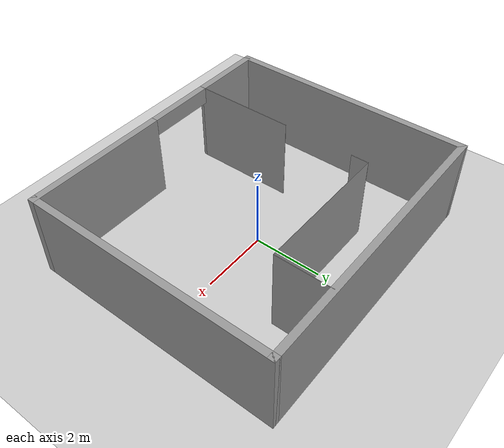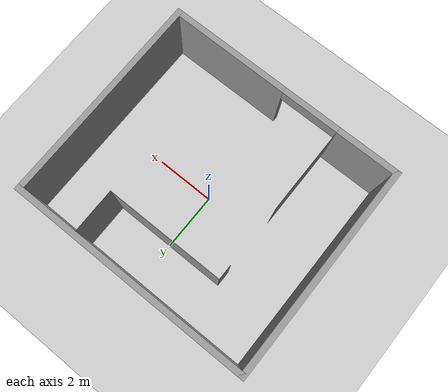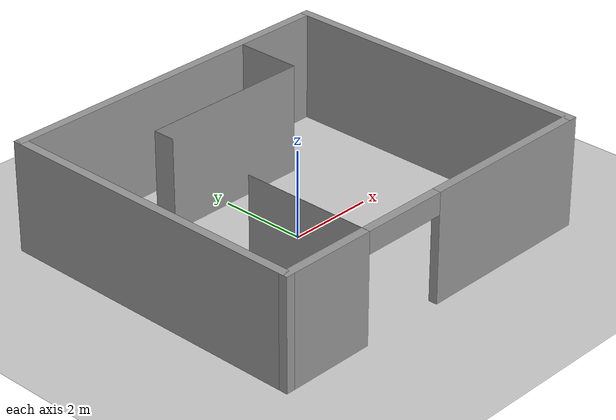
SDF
<sdf version="1.4">
 <world name="default">
  <plugin name="ros_link_attacher_plugin" filename="libgazebo_ros_link_attacher.so"/>
  <light name="sun" type="directional">
   <pose>0 0 10 0 -0 0</pose>
   <diffuse>0.8 0.8 0.8 1</diffuse>
   <specular>0.2 0.2 0.2 1</specular>
   <attenuation>
    <range>1000</range>
    <constant>0.9</constant>
    <linear>0.01</linear>
    <quadratic>0.001</quadratic>
   </attenuation>
   <direction>-0.5 0.1 -0.9</direction>
  </light>
  <model name="ground_plane">
   <static>1</static>
   <link name="link">
    <collision name="collision">
     <geometry><plane><normal>0 0 1</normal><size>100 100</size></plane></geometry>
     <surface><friction><ode><mu>100</mu><mu2>50</mu2></ode></friction></surface>
    </collision>
    <visual name="visual">
     <cast_shadows>0</cast_shadows>
     <geometry><plane><normal>0 0 1</normal><size>100 100</size></plane></geometry>
     <material>
      <script><uri>file://media/materials/scripts/gazebo.material</uri><name>Gazebo/Grey</name></script>
     </material>
    </visual>
    <velocity_decay><linear>0</linear><angular>0</angular></velocity_decay>
   </link>
  </model>
  <physics type="ode">
   <max_step_size>0.001</max_step_size>
   <real_time_factor>1</real_time_factor>
   <real_time_update_rate>1000</real_time_update_rate>
   <gravity>0 0 -9.8</gravity>
  </physics>
  <scene><ambient>0.4 0.4 0.4 1</ambient><background>0.7 0.7 0.7 1</background><shadows>1</shadows></scene>
  <spherical_coordinates>
   <surface_model>EARTH_WGS84</surface_model>
   <latitude_deg>0</latitude_deg>
   <longitude_deg>0</longitude_deg>
   <elevation>0</elevation>
   <heading_deg>0</heading_deg>
  </spherical_coordinates>
  <model name="model">
   <link name="Wall_0">
    <collision name="Wall_0_Collision">
     <geometry><box><size>7.4 0.2 2.5</size></box></geometry>
     <pose>0 0 1.25 0 -0 0</pose>
    </collision>
    <visual name="Wall_0_Visual">
     <pose>0 0 1.25 0 -0 0</pose>
     <geometry><box><size>7.4 0.2 2.5</size></box></geometry>
     <material>
      <script><uri>file://media/materials/scripts/gazebo.material</uri><name>Gazebo/Grey</name></script>
     </material>
    </visual>
    <velocity_decay><linear>0</linear><angular>0</angular></velocity_decay>
    <pose>-4.1 0 0 0 -0 1.5708</pose>
   </link>
   <link name="Wall_1">
    <collision name="Wall_1_Collision">
     <geometry><box><size>8.4 0.2 2.5</size></box></geometry>
     <pose>0 0 1.25 0 -0 0</pose>
    </collision>
    <visual name="Wall_1_Visual">
     <pose>0 0 1.25 0 -0 0</pose>
     <geometry><box><size>8.4 0.2 2.5</size></box></geometry>
     <material>
      <script><uri>file://media/materials/scripts/gazebo.material</uri><name>Gazebo/Grey</name></script>
     </material>
    </visual>
    <velocity_decay><linear>0</linear><angular>0</angular></velocity_decay>
    <pose>0 3.6 0 0 -0 0</pose>
   </link>
   <link name="Wall_12">
    <collision name="Wall_12_Collision">
     <geometry><box><size>0.51 0.01 2.5</size></box></geometry>
     <pose>0 0 1.25 0 -0 0</pose>
    </collision>
    <visual name="Wall_12_Visual">
     <pose>0 0 1.25 0 -0 0</pose>
     <geometry><box><size>0.51 0.01 2.5</size></box></geometry>
     <material>
      <script><uri>file://media/materials/scripts/gazebo.material</uri><name>Gazebo/Grey</name></script>
     </material>
    </visual>
    <velocity_decay><linear>0</linear><angular>0</angular></velocity_decay>
    <pose>-2 1.75 0 0 -0 1.5708</pose>
   </link>
   <link name="Wall_13">
    <collision name="Wall_13_Collision">
     <geometry><box><size>4.01 0.01 2.5</size></box></geometry>
     <pose>0 0 1.25 0 -0 0</pose>
    </collision>
    <visual name="Wall_13_Visual">
     <pose>0 0 1.25 0 -0 0</pose>
     <geometry><box><size>4.01 0.01 2.5</size></box></geometry>
     <material>
      <script><uri>file://media/materials/scripts/gazebo.material</uri><name>Gazebo/Grey</name></script>
     </material>
    </visual>
    <velocity_decay><linear>0</linear><angular>0</angular></velocity_decay>
    <pose>0 2 0 0 -0 0</pose>
   </link>
   <link name="Wall_14">
    <collision name="Wall_14_Collision">
     <geometry><box><size>1.61 0.01 2.5</size></box></geometry>
     <pose>0 0 1.25 0 -0 0</pose>
    </collision>
    <visual name="Wall_14_Visual">
     <pose>0 0 1.25 0 -0 0</pose>
     <geometry><box><size>1.61 0.01 2.5</size></box></geometry>
     <material>
      <script><uri>file://media/materials/scripts/gazebo.material</uri><name>Gazebo/Grey</name></script>
     </material>
    </visual>
    <velocity_decay><linear>0</linear><angular>0</angular></velocity_decay>
    <pose>2 2.8 0 0 -0 1.5708</pose>
   </link>
   <link name="Wall_2">
    <collision name="Wall_2_Collision">
     <geometry><box><size>7.4 0.2 2.5</size></box></geometry>
     <pose>0 0 1.25 0 -0 0</pose>
    </collision>
    <visual name="Wall_2_Visual">
     <pose>0 0 1.25 0 -0 0</pose>
     <geometry><box><size>7.4 0.2 2.5</size></box></geometry>
     <material>
      <script><uri>file://media/materials/scripts/gazebo.material</uri><name>Gazebo/Grey</name></script>
     </material>
    </visual>
    <velocity_decay><linear>0</linear><angular>0</angular></velocity_decay>
    <pose>4.1 0 0 0 0 -1.5708</pose>
   </link>
   <link name="Wall_3">
    <pose>0 -3.6 0 0 -0 3.14159</pose>
    <visual name="Wall_3_Visual_0">
     <pose>-2.1 0 1.25 0 -0 0</pose>
     <geometry><box><size>4.2 0.2 2.5</size></box></geometry>
     <material>
      <script><uri>file://media/materials/scripts/gazebo.material</uri><name>Gazebo/Grey</name></script>
     </material>
    </visual>
    <collision name="Wall_3_Collision_0">
     <geometry><box><size>4.2 0.2 2.5</size></box></geometry>
     <pose>-2.1 0 1.25 0 -0 0</pose>
    </collision>
    <visual name="Wall_3_Visual_1">
     <pose>3.1 0 1.25 0 -0 0</pose>
     <geometry><box><size>2.2 0.2 2.5</size></box></geometry>
     <material>
      <script><uri>file://media/materials/scripts/gazebo.material</uri><name>Gazebo/Grey</name></script>
     </material>
    </visual>
    <collision name="Wall_3_Collision_1">
     <geometry><box><size>2.2 0.2 2.5</size></box></geometry>
     <pose>3.1 0 1.25 0 -0 0</pose>
    </collision>
    <visual name="Wall_3_Visual_2">
     <pose>1 0 2.25 0 -0 0</pose>
     <geometry><box><size>2 0.2 0.5</size></box></geometry>
     <material>
      <script><uri>file://media/materials/scripts/gazebo.material</uri><name>Gazebo/Grey</name></script>
     </material>
    </visual>
    <collision name="Wall_3_Collision_2">
     <geometry><box><size>2 0.2 0.5</size></box></geometry>
     <pose>1 0 2.25 0 -0 0</pose>
    </collision>
    <velocity_decay><linear>0</linear><angular>0</angular></velocity_decay>
   </link>
   <link name="Wall_5">
    <collision name="Wall_5_Collision">
     <geometry><box><size>3.01 0.01 2.5</size></box></geometry>
     <pose>0 0 1.25 0 -0 0</pose>
    </collision>
    <visual name="Wall_5_Visual">
     <pose>0 0 1.25 0 -0 0</pose>
     <geometry><box><size>3.01 0.01 2.5</size></box></geometry>
     <material>
      <script><uri>file://media/materials/scripts/gazebo.material</uri><name>Gazebo/Grey</name></script>
     </material>
    </visual>
    <velocity_decay><linear>0</linear><angular>0</angular></velocity_decay>
    <pose>-2 -2.1 0 0 -0 1.5708</pose>
   </link>
   <static>1</static>
  </model>
 </world>
</sdf>
